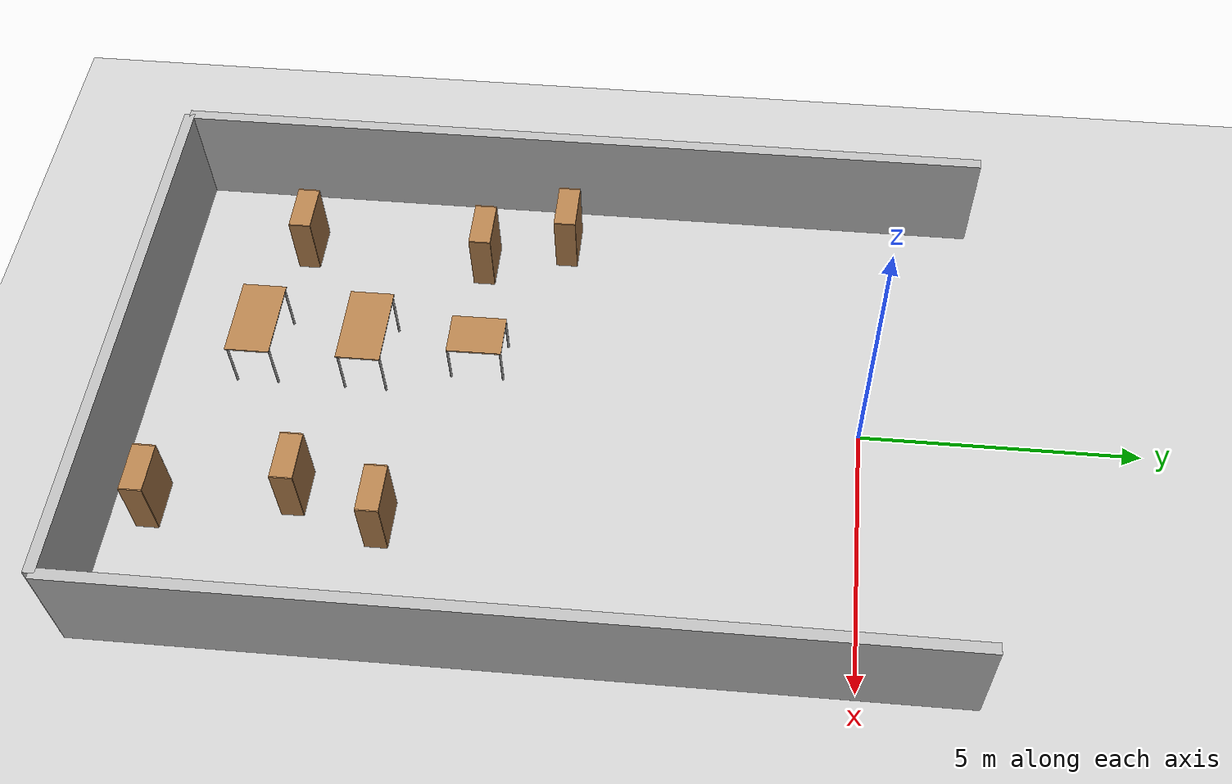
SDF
<sdf version="1.6">
 <world name="default">
  <model name="ground_plane">
   <static>1</static>
   <link name="link">
    <collision name="collision">
     <geometry><plane><normal>0 0 1</normal><size>100 100</size></plane></geometry>
     <surface><friction><ode><mu>100</mu><mu2>50</mu2></ode></friction></surface>
    </collision>
    <visual name="visual">
     <cast_shadows>0</cast_shadows>
     <geometry><plane><normal>0 0 1</normal><size>100 100</size></plane></geometry>
     <material>
      <script><uri>file://media/materials/scripts/gazebo.material</uri><name>Gazebo/Grey</name></script>
     </material>
    </visual>
    <velocity_decay><linear>0</linear><angular>0</angular></velocity_decay>
   </link>
  </model>
  <model name="wall_1_model">
   <pose>0 -13 1 0 -0 0</pose>
   <static>1</static>
   <link name="wall_1_body">
    <inertial>
     <mass>1</mass>
     <inertia><ixx>1</ixx><ixy>0</ixy><ixz>0</ixz><iyy>1</iyy><iyz>0</iyz><izz>1</izz></inertia>
    </inertial>
    <collision name="collision"><geometry><box><size>10 0.2 2</size></box></geometry></collision>
    <visual name="visual"><geometry><box><size>10 0.2 2</size></box></geometry></visual>
    <velocity_decay><linear>0</linear><angular>0</angular></velocity_decay>
   </link>
  </model>
  <model name="wall_3_model">
   <pose>-5 -5.5 1 0 -0 0</pose>
   <static>1</static>
   <link name="wall_3_body">
    <inertial>
     <mass>1</mass>
     <inertia><ixx>1</ixx><ixy>0</ixy><ixz>0</ixz><iyy>1</iyy><iyz>0</iyz><izz>1</izz></inertia>
    </inertial>
    <collision name="collision"><geometry><box><size>0.2 15 2</size></box></geometry></collision>
    <visual name="visual"><geometry><box><size>0.2 15 2</size></box></geometry></visual>
    <velocity_decay><linear>0</linear><angular>0</angular></velocity_decay>
   </link>
  </model>
  <model name="wall_4_model">
   <pose>5 -5.5 1 0 -0 0</pose>
   <static>1</static>
   <link name="wall_4_body">
    <inertial>
     <mass>1</mass>
     <inertia><ixx>1</ixx><ixy>0</ixy><ixz>0</ixz><iyy>1</iyy><iyz>0</iyz><izz>1</izz></inertia>
    </inertial>
    <collision name="collision"><geometry><box><size>0.2 15 2</size></box></geometry></collision>
    <visual name="visual"><geometry><box><size>0.2 15 2</size></box></geometry></visual>
    <velocity_decay><linear>0</linear><angular>0</angular></velocity_decay>
   </link>
  </model>
  <model name="bookshelf">
   <static>0</static>
   <link name="link">
    <inertial>
     <mass>1</mass>
     <inertia><ixx>1</ixx><ixy>0</ixy><ixz>0</ixz><iyy>1</iyy><iyz>0</iyz><izz>1</izz></inertia>
    </inertial>
    <collision name="back">
     <pose>0 0.005 0.6 0 -0 0</pose>
     <geometry><box><size>0.9 0.01 1.2</size></box></geometry>
    </collision>
    <visual name="visual1">
     <pose>0 0.005 0.6 0 -0 0</pose>
     <geometry><box><size>0.9 0.01 1.2</size></box></geometry>
     <material>
      <script><uri>file://media/materials/scripts/gazebo.material</uri><name>Gazebo/Wood</name></script>
     </material>
    </visual>
    <collision name="left_side">
     <pose>0.45 -0.195 0.6 0 -0 0</pose>
     <geometry><box><size>0.02 0.4 1.2</size></box></geometry>
    </collision>
    <visual name="visual2">
     <pose>0.45 -0.195 0.6 0 -0 0</pose>
     <geometry><box><size>0.02 0.4 1.2</size></box></geometry>
     <material>
      <script><uri>file://media/materials/scripts/gazebo.material</uri><name>Gazebo/Wood</name></script>
     </material>
    </visual>
    <collision name="right_side">
     <pose>-0.45 -0.195 0.6 0 -0 0</pose>
     <geometry><box><size>0.02 0.4 1.2</size></box></geometry>
    </collision>
    <visual name="visual3">
     <pose>-0.45 -0.195 0.6 0 -0 0</pose>
     <geometry><box><size>0.02 0.4 1.2</size></box></geometry>
     <material>
      <script><uri>file://media/materials/scripts/gazebo.material</uri><name>Gazebo/Wood</name></script>
     </material>
    </visual>
    <collision name="bottom">
     <pose>0 -0.195 0.03 0 -0 0</pose>
     <geometry><box><size>0.88 0.4 0.06</size></box></geometry>
    </collision>
    <visual name="visual4">
     <pose>0 -0.195 0.03 0 -0 0</pose>
     <geometry><box><size>0.88 0.4 0.06</size></box></geometry>
     <material>
      <script><uri>file://media/materials/scripts/gazebo.material</uri><name>Gazebo/Wood</name></script>
     </material>
    </visual>
    <collision name="top">
     <pose>0 -0.195 1.19 0 -0 0</pose>
     <geometry><box><size>0.88 0.4 0.02</size></box></geometry>
    </collision>
    <visual name="visual5">
     <pose>0 -0.195 1.19 0 -0 0</pose>
     <geometry><box><size>0.88 0.4 0.02</size></box></geometry>
     <material>
      <script><uri>file://media/materials/scripts/gazebo.material</uri><name>Gazebo/Wood</name></script>
     </material>
    </visual>
    <collision name="low_shelf">
     <pose>0 -0.195 0.43 0 -0 0</pose>
     <geometry><box><size>0.88 0.4 0.02</size></box></geometry>
    </collision>
    <visual name="visual6">
     <pose>0 -0.195 0.43 0 -0 0</pose>
     <geometry><box><size>0.88 0.4 0.02</size></box></geometry>
     <material>
      <script><uri>file://media/materials/scripts/gazebo.material</uri><name>Gazebo/Wood</name></script>
     </material>
    </visual>
    <collision name="high_shelf">
     <pose>0 -0.195 0.8 0 -0 0</pose>
     <geometry><box><size>0.88 0.4 0.02</size></box></geometry>
    </collision>
    <visual name="visual7">
     <pose>0 -0.195 0.8 0 -0 0</pose>
     <geometry><box><size>0.88 0.4 0.02</size></box></geometry>
     <material>
      <script><uri>file://media/materials/scripts/gazebo.material</uri><name>Gazebo/Wood</name></script>
     </material>
    </visual>
    <velocity_decay><linear>0</linear><angular>0</angular></velocity_decay>
   </link>
   <pose>2 -9.55401 -1e-06 -5e-05 -3e-06 0</pose>
  </model>
  <model name="table">
   <static>0</static>
   <link name="link">
    <collision name="surface">
     <pose>0 0 1 0 -0 0</pose>
     <geometry><box><size>1.5 0.8 0.03</size></box></geometry>
    </collision>
    <visual name="visual1">
     <pose>0 0 1 0 -0 0</pose>
     <geometry><box><size>1.5 0.8 0.03</size></box></geometry>
     <material>
      <script><uri>file://media/materials/scripts/gazebo.material</uri><name>Gazebo/Wood</name></script>
     </material>
    </visual>
    <collision name="front_left_leg">
     <pose>0.68 0.38 0.5 0 -0 0</pose>
     <geometry><cylinder><radius>0.02</radius><length>1</length></cylinder></geometry>
    </collision>
    <visual name="front_left_leg">
     <pose>0.68 0.38 0.5 0 -0 0</pose>
     <geometry><cylinder><radius>0.02</radius><length>1</length></cylinder></geometry>
     <material>
      <script><uri>file://media/materials/scripts/gazebo.material</uri><name>Gazebo/Grey</name></script>
     </material>
    </visual>
    <collision name="front_right_leg">
     <pose>0.68 -0.38 0.5 0 -0 0</pose>
     <geometry><cylinder><radius>0.02</radius><length>1</length></cylinder></geometry>
    </collision>
    <visual name="front_right_leg">
     <pose>0.68 -0.38 0.5 0 -0 0</pose>
     <geometry><cylinder><radius>0.02</radius><length>1</length></cylinder></geometry>
     <material>
      <script><uri>file://media/materials/scripts/gazebo.material</uri><name>Gazebo/Grey</name></script>
     </material>
    </visual>
    <collision name="back_right_leg">
     <pose>-0.68 -0.38 0.5 0 -0 0</pose>
     <geometry><cylinder><radius>0.02</radius><length>1</length></cylinder></geometry>
    </collision>
    <visual name="back_right_leg">
     <pose>-0.68 -0.38 0.5 0 -0 0</pose>
     <geometry><cylinder><radius>0.02</radius><length>1</length></cylinder></geometry>
     <material>
      <script><uri>file://media/materials/scripts/gazebo.material</uri><name>Gazebo/Grey</name></script>
     </material>
    </visual>
    <collision name="back_left_leg">
     <pose>-0.68 0.38 0.5 0 -0 0</pose>
     <geometry><cylinder><radius>0.02</radius><length>1</length></cylinder></geometry>
    </collision>
    <visual name="back_left_leg">
     <pose>-0.68 0.38 0.5 0 -0 0</pose>
     <geometry><cylinder><radius>0.02</radius><length>1</length></cylinder></geometry>
     <material>
      <script><uri>file://media/materials/scripts/gazebo.material</uri><name>Gazebo/Grey</name></script>
     </material>
    </visual>
    <velocity_decay><linear>0</linear><angular>0</angular></velocity_decay>
    <inertial>
     <inertia><ixx>1</ixx><ixy>0</ixy><ixz>0</ixz><iyy>1</iyy><iyz>0</iyz><izz>1</izz></inertia>
     <mass>1</mass>
    </inertial>
   </link>
   <pose>-1 -9 0 0 -0 0</pose>
  </model>
  <model name="bookshelf_2">
   <static>0</static>
   <link name="link">
    <inertial>
     <mass>1</mass>
     <inertia><ixx>1</ixx><ixy>0</ixy><ixz>0</ixz><iyy>1</iyy><iyz>0</iyz><izz>1</izz></inertia>
    </inertial>
    <collision name="back">
     <pose>0 0.005 0.6 0 -0 0</pose>
     <geometry><box><size>0.9 0.01 1.2</size></box></geometry>
    </collision>
    <visual name="visual1">
     <pose>0 0.005 0.6 0 -0 0</pose>
     <geometry><box><size>0.9 0.01 1.2</size></box></geometry>
     <material>
      <script><uri>file://media/materials/scripts/gazebo.material</uri><name>Gazebo/Wood</name></script>
     </material>
    </visual>
    <collision name="left_side">
     <pose>0.45 -0.195 0.6 0 -0 0</pose>
     <geometry><box><size>0.02 0.4 1.2</size></box></geometry>
    </collision>
    <visual name="visual2">
     <pose>0.45 -0.195 0.6 0 -0 0</pose>
     <geometry><box><size>0.02 0.4 1.2</size></box></geometry>
     <material>
      <script><uri>file://media/materials/scripts/gazebo.material</uri><name>Gazebo/Wood</name></script>
     </material>
    </visual>
    <collision name="right_side">
     <pose>-0.45 -0.195 0.6 0 -0 0</pose>
     <geometry><box><size>0.02 0.4 1.2</size></box></geometry>
    </collision>
    <visual name="visual3">
     <pose>-0.45 -0.195 0.6 0 -0 0</pose>
     <geometry><box><size>0.02 0.4 1.2</size></box></geometry>
     <material>
      <script><uri>file://media/materials/scripts/gazebo.material</uri><name>Gazebo/Wood</name></script>
     </material>
    </visual>
    <collision name="bottom">
     <pose>0 -0.195 0.03 0 -0 0</pose>
     <geometry><box><size>0.88 0.4 0.06</size></box></geometry>
    </collision>
    <visual name="visual4">
     <pose>0 -0.195 0.03 0 -0 0</pose>
     <geometry><box><size>0.88 0.4 0.06</size></box></geometry>
     <material>
      <script><uri>file://media/materials/scripts/gazebo.material</uri><name>Gazebo/Wood</name></script>
     </material>
    </visual>
    <collision name="top">
     <pose>0 -0.195 1.19 0 -0 0</pose>
     <geometry><box><size>0.88 0.4 0.02</size></box></geometry>
    </collision>
    <visual name="visual5">
     <pose>0 -0.195 1.19 0 -0 0</pose>
     <geometry><box><size>0.88 0.4 0.02</size></box></geometry>
     <material>
      <script><uri>file://media/materials/scripts/gazebo.material</uri><name>Gazebo/Wood</name></script>
     </material>
    </visual>
    <collision name="low_shelf">
     <pose>0 -0.195 0.43 0 -0 0</pose>
     <geometry><box><size>0.88 0.4 0.02</size></box></geometry>
    </collision>
    <visual name="visual6">
     <pose>0 -0.195 0.43 0 -0 0</pose>
     <geometry><box><size>0.88 0.4 0.02</size></box></geometry>
     <material>
      <script><uri>file://media/materials/scripts/gazebo.material</uri><name>Gazebo/Wood</name></script>
     </material>
    </visual>
    <collision name="high_shelf">
     <pose>0 -0.195 0.8 0 -0 0</pose>
     <geometry><box><size>0.88 0.4 0.02</size></box></geometry>
    </collision>
    <visual name="visual7">
     <pose>0 -0.195 0.8 0 -0 0</pose>
     <geometry><box><size>0.88 0.4 0.02</size></box></geometry>
     <material>
      <script><uri>file://media/materials/scripts/gazebo.material</uri><name>Gazebo/Wood</name></script>
     </material>
    </visual>
    <velocity_decay><linear>0</linear><angular>0</angular></velocity_decay>
   </link>
   <pose>-3.41849 -7 1e-06 -1.3e-05 -1e-06 0</pose>
  </model>
  <model name="table_1">
   <static>0</static>
   <link name="link">
    <collision name="surface">
     <pose>0 0 1 0 -0 0</pose>
     <geometry><box><size>1.5 0.8 0.03</size></box></geometry>
    </collision>
    <visual name="visual1">
     <pose>0 0 1 0 -0 0</pose>
     <geometry><box><size>1.5 0.8 0.03</size></box></geometry>
     <material>
      <script><uri>file://media/materials/scripts/gazebo.material</uri><name>Gazebo/Wood</name></script>
     </material>
    </visual>
    <collision name="front_left_leg">
     <pose>0.68 0.38 0.5 0 -0 0</pose>
     <geometry><cylinder><radius>0.02</radius><length>1</length></cylinder></geometry>
    </collision>
    <visual name="front_left_leg">
     <pose>0.68 0.38 0.5 0 -0 0</pose>
     <geometry><cylinder><radius>0.02</radius><length>1</length></cylinder></geometry>
     <material>
      <script><uri>file://media/materials/scripts/gazebo.material</uri><name>Gazebo/Grey</name></script>
     </material>
    </visual>
    <collision name="front_right_leg">
     <pose>0.68 -0.38 0.5 0 -0 0</pose>
     <geometry><cylinder><radius>0.02</radius><length>1</length></cylinder></geometry>
    </collision>
    <visual name="front_right_leg">
     <pose>0.68 -0.38 0.5 0 -0 0</pose>
     <geometry><cylinder><radius>0.02</radius><length>1</length></cylinder></geometry>
     <material>
      <script><uri>file://media/materials/scripts/gazebo.material</uri><name>Gazebo/Grey</name></script>
     </material>
    </visual>
    <collision name="back_right_leg">
     <pose>-0.68 -0.38 0.5 0 -0 0</pose>
     <geometry><cylinder><radius>0.02</radius><length>1</length></cylinder></geometry>
    </collision>
    <visual name="back_right_leg">
     <pose>-0.68 -0.38 0.5 0 -0 0</pose>
     <geometry><cylinder><radius>0.02</radius><length>1</length></cylinder></geometry>
     <material>
      <script><uri>file://media/materials/scripts/gazebo.material</uri><name>Gazebo/Grey</name></script>
     </material>
    </visual>
    <collision name="back_left_leg">
     <pose>-0.68 0.38 0.5 0 -0 0</pose>
     <geometry><cylinder><radius>0.02</radius><length>1</length></cylinder></geometry>
    </collision>
    <visual name="back_left_leg">
     <pose>-0.68 0.38 0.5 0 -0 0</pose>
     <geometry><cylinder><radius>0.02</radius><length>1</length></cylinder></geometry>
     <material>
      <script><uri>file://media/materials/scripts/gazebo.material</uri><name>Gazebo/Grey</name></script>
     </material>
    </visual>
    <velocity_decay><linear>0</linear><angular>0</angular></velocity_decay>
    <inertial>
     <inertia><ixx>1</ixx><ixy>0</ixy><ixz>0</ixz><iyy>1</iyy><iyz>0</iyz><izz>1</izz></inertia>
     <mass>1</mass>
    </inertial>
   </link>
   <pose>-1 -11 0 0 -0 0</pose>
  </model>
  <model name="bookshelf_3">
   <static>0</static>
   <link name="link">
    <inertial>
     <mass>1</mass>
     <inertia><ixx>1</ixx><ixy>0</ixy><ixz>0</ixz><iyy>1</iyy><iyz>0</iyz><izz>1</izz></inertia>
    </inertial>
    <collision name="back">
     <pose>0 0.005 0.6 0 -0 0</pose>
     <geometry><box><size>0.9 0.01 1.2</size></box></geometry>
    </collision>
    <visual name="visual1">
     <pose>0 0.005 0.6 0 -0 0</pose>
     <geometry><box><size>0.9 0.01 1.2</size></box></geometry>
     <material>
      <script><uri>file://media/materials/scripts/gazebo.material</uri><name>Gazebo/Wood</name></script>
     </material>
    </visual>
    <collision name="left_side">
     <pose>0.45 -0.195 0.6 0 -0 0</pose>
     <geometry><box><size>0.02 0.4 1.2</size></box></geometry>
    </collision>
    <visual name="visual2">
     <pose>0.45 -0.195 0.6 0 -0 0</pose>
     <geometry><box><size>0.02 0.4 1.2</size></box></geometry>
     <material>
      <script><uri>file://media/materials/scripts/gazebo.material</uri><name>Gazebo/Wood</name></script>
     </material>
    </visual>
    <collision name="right_side">
     <pose>-0.45 -0.195 0.6 0 -0 0</pose>
     <geometry><box><size>0.02 0.4 1.2</size></box></geometry>
    </collision>
    <visual name="visual3">
     <pose>-0.45 -0.195 0.6 0 -0 0</pose>
     <geometry><box><size>0.02 0.4 1.2</size></box></geometry>
     <material>
      <script><uri>file://media/materials/scripts/gazebo.material</uri><name>Gazebo/Wood</name></script>
     </material>
    </visual>
    <collision name="bottom">
     <pose>0 -0.195 0.03 0 -0 0</pose>
     <geometry><box><size>0.88 0.4 0.06</size></box></geometry>
    </collision>
    <visual name="visual4">
     <pose>0 -0.195 0.03 0 -0 0</pose>
     <geometry><box><size>0.88 0.4 0.06</size></box></geometry>
     <material>
      <script><uri>file://media/materials/scripts/gazebo.material</uri><name>Gazebo/Wood</name></script>
     </material>
    </visual>
    <collision name="top">
     <pose>0 -0.195 1.19 0 -0 0</pose>
     <geometry><box><size>0.88 0.4 0.02</size></box></geometry>
    </collision>
    <visual name="visual5">
     <pose>0 -0.195 1.19 0 -0 0</pose>
     <geometry><box><size>0.88 0.4 0.02</size></box></geometry>
     <material>
      <script><uri>file://media/materials/scripts/gazebo.material</uri><name>Gazebo/Wood</name></script>
     </material>
    </visual>
    <collision name="low_shelf">
     <pose>0 -0.195 0.43 0 -0 0</pose>
     <geometry><box><size>0.88 0.4 0.02</size></box></geometry>
    </collision>
    <visual name="visual6">
     <pose>0 -0.195 0.43 0 -0 0</pose>
     <geometry><box><size>0.88 0.4 0.02</size></box></geometry>
     <material>
      <script><uri>file://media/materials/scripts/gazebo.material</uri><name>Gazebo/Wood</name></script>
     </material>
    </visual>
    <collision name="high_shelf">
     <pose>0 -0.195 0.8 0 -0 0</pose>
     <geometry><box><size>0.88 0.4 0.02</size></box></geometry>
    </collision>
    <visual name="visual7">
     <pose>0 -0.195 0.8 0 -0 0</pose>
     <geometry><box><size>0.88 0.4 0.02</size></box></geometry>
     <material>
      <script><uri>file://media/materials/scripts/gazebo.material</uri><name>Gazebo/Wood</name></script>
     </material>
    </visual>
    <velocity_decay><linear>0</linear><angular>0</angular></velocity_decay>
   </link>
   <pose>2.45055 -12 0 -1.8e-05 0 0</pose>
  </model>
  <model name="bookshelf_4">
   <static>0</static>
   <link name="link">
    <inertial>
     <mass>1</mass>
     <inertia><ixx>1</ixx><ixy>0</ixy><ixz>0</ixz><iyy>1</iyy><iyz>0</iyz><izz>1</izz></inertia>
    </inertial>
    <collision name="back">
     <pose>0 0.005 0.6 0 -0 0</pose>
     <geometry><box><size>0.9 0.01 1.2</size></box></geometry>
    </collision>
    <visual name="visual1">
     <pose>0 0.005 0.6 0 -0 0</pose>
     <geometry><box><size>0.9 0.01 1.2</size></box></geometry>
     <material>
      <script><uri>file://media/materials/scripts/gazebo.material</uri><name>Gazebo/Wood</name></script>
     </material>
    </visual>
    <collision name="left_side">
     <pose>0.45 -0.195 0.6 0 -0 0</pose>
     <geometry><box><size>0.02 0.4 1.2</size></box></geometry>
    </collision>
    <visual name="visual2">
     <pose>0.45 -0.195 0.6 0 -0 0</pose>
     <geometry><box><size>0.02 0.4 1.2</size></box></geometry>
     <material>
      <script><uri>file://media/materials/scripts/gazebo.material</uri><name>Gazebo/Wood</name></script>
     </material>
    </visual>
    <collision name="right_side">
     <pose>-0.45 -0.195 0.6 0 -0 0</pose>
     <geometry><box><size>0.02 0.4 1.2</size></box></geometry>
    </collision>
    <visual name="visual3">
     <pose>-0.45 -0.195 0.6 0 -0 0</pose>
     <geometry><box><size>0.02 0.4 1.2</size></box></geometry>
     <material>
      <script><uri>file://media/materials/scripts/gazebo.material</uri><name>Gazebo/Wood</name></script>
     </material>
    </visual>
    <collision name="bottom">
     <pose>0 -0.195 0.03 0 -0 0</pose>
     <geometry><box><size>0.88 0.4 0.06</size></box></geometry>
    </collision>
    <visual name="visual4">
     <pose>0 -0.195 0.03 0 -0 0</pose>
     <geometry><box><size>0.88 0.4 0.06</size></box></geometry>
     <material>
      <script><uri>file://media/materials/scripts/gazebo.material</uri><name>Gazebo/Wood</name></script>
     </material>
    </visual>
    <collision name="top">
     <pose>0 -0.195 1.19 0 -0 0</pose>
     <geometry><box><size>0.88 0.4 0.02</size></box></geometry>
    </collision>
    <visual name="visual5">
     <pose>0 -0.195 1.19 0 -0 0</pose>
     <geometry><box><size>0.88 0.4 0.02</size></box></geometry>
     <material>
      <script><uri>file://media/materials/scripts/gazebo.material</uri><name>Gazebo/Wood</name></script>
     </material>
    </visual>
    <collision name="low_shelf">
     <pose>0 -0.195 0.43 0 -0 0</pose>
     <geometry><box><size>0.88 0.4 0.02</size></box></geometry>
    </collision>
    <visual name="visual6">
     <pose>0 -0.195 0.43 0 -0 0</pose>
     <geometry><box><size>0.88 0.4 0.02</size></box></geometry>
     <material>
      <script><uri>file://media/materials/scripts/gazebo.material</uri><name>Gazebo/Wood</name></script>
     </material>
    </visual>
    <collision name="high_shelf">
     <pose>0 -0.195 0.8 0 -0 0</pose>
     <geometry><box><size>0.88 0.4 0.02</size></box></geometry>
    </collision>
    <visual name="visual7">
     <pose>0 -0.195 0.8 0 -0 0</pose>
     <geometry><box><size>0.88 0.4 0.02</size></box></geometry>
     <material>
      <script><uri>file://media/materials/scripts/gazebo.material</uri><name>Gazebo/Wood</name></script>
     </material>
    </visual>
    <velocity_decay><linear>0</linear><angular>0</angular></velocity_decay>
   </link>
   <pose>2.51316 -8 0 -3e-05 0 0</pose>
  </model>
  <model name="bookshelf_5">
   <static>0</static>
   <link name="link">
    <inertial>
     <mass>1</mass>
     <inertia><ixx>1</ixx><ixy>0</ixy><ixz>0</ixz><iyy>1</iyy><iyz>0</iyz><izz>1</izz></inertia>
    </inertial>
    <collision name="back">
     <pose>0 0.005 0.6 0 -0 0</pose>
     <geometry><box><size>0.9 0.01 1.2</size></box></geometry>
    </collision>
    <visual name="visual1">
     <pose>0 0.005 0.6 0 -0 0</pose>
     <geometry><box><size>0.9 0.01 1.2</size></box></geometry>
     <material>
      <script><uri>file://media/materials/scripts/gazebo.material</uri><name>Gazebo/Wood</name></script>
     </material>
    </visual>
    <collision name="left_side">
     <pose>0.45 -0.195 0.6 0 -0 0</pose>
     <geometry><box><size>0.02 0.4 1.2</size></box></geometry>
    </collision>
    <visual name="visual2">
     <pose>0.45 -0.195 0.6 0 -0 0</pose>
     <geometry><box><size>0.02 0.4 1.2</size></box></geometry>
     <material>
      <script><uri>file://media/materials/scripts/gazebo.material</uri><name>Gazebo/Wood</name></script>
     </material>
    </visual>
    <collision name="right_side">
     <pose>-0.45 -0.195 0.6 0 -0 0</pose>
     <geometry><box><size>0.02 0.4 1.2</size></box></geometry>
    </collision>
    <visual name="visual3">
     <pose>-0.45 -0.195 0.6 0 -0 0</pose>
     <geometry><box><size>0.02 0.4 1.2</size></box></geometry>
     <material>
      <script><uri>file://media/materials/scripts/gazebo.material</uri><name>Gazebo/Wood</name></script>
     </material>
    </visual>
    <collision name="bottom">
     <pose>0 -0.195 0.03 0 -0 0</pose>
     <geometry><box><size>0.88 0.4 0.06</size></box></geometry>
    </collision>
    <visual name="visual4">
     <pose>0 -0.195 0.03 0 -0 0</pose>
     <geometry><box><size>0.88 0.4 0.06</size></box></geometry>
     <material>
      <script><uri>file://media/materials/scripts/gazebo.material</uri><name>Gazebo/Wood</name></script>
     </material>
    </visual>
    <collision name="top">
     <pose>0 -0.195 1.19 0 -0 0</pose>
     <geometry><box><size>0.88 0.4 0.02</size></box></geometry>
    </collision>
    <visual name="visual5">
     <pose>0 -0.195 1.19 0 -0 0</pose>
     <geometry><box><size>0.88 0.4 0.02</size></box></geometry>
     <material>
      <script><uri>file://media/materials/scripts/gazebo.material</uri><name>Gazebo/Wood</name></script>
     </material>
    </visual>
    <collision name="low_shelf">
     <pose>0 -0.195 0.43 0 -0 0</pose>
     <geometry><box><size>0.88 0.4 0.02</size></box></geometry>
    </collision>
    <visual name="visual6">
     <pose>0 -0.195 0.43 0 -0 0</pose>
     <geometry><box><size>0.88 0.4 0.02</size></box></geometry>
     <material>
      <script><uri>file://media/materials/scripts/gazebo.material</uri><name>Gazebo/Wood</name></script>
     </material>
    </visual>
    <collision name="high_shelf">
     <pose>0 -0.195 0.8 0 -0 0</pose>
     <geometry><box><size>0.88 0.4 0.02</size></box></geometry>
    </collision>
    <visual name="visual7">
     <pose>0 -0.195 0.8 0 -0 0</pose>
     <geometry><box><size>0.88 0.4 0.02</size></box></geometry>
     <material>
      <script><uri>file://media/materials/scripts/gazebo.material</uri><name>Gazebo/Wood</name></script>
     </material>
    </visual>
    <velocity_decay><linear>0</linear><angular>0</angular></velocity_decay>
   </link>
   <pose>-3.53929 -10.4222 -1e-06 -2.7e-05 -3e-06 0</pose>
  </model>
  <model name="bookshelf_6">
   <static>0</static>
   <link name="link">
    <inertial>
     <mass>1</mass>
     <inertia><ixx>1</ixx><ixy>0</ixy><ixz>0</ixz><iyy>1</iyy><iyz>0</iyz><izz>1</izz></inertia>
    </inertial>
    <collision name="back">
     <pose>0 0.005 0.6 0 -0 0</pose>
     <geometry><box><size>0.9 0.01 1.2</size></box></geometry>
    </collision>
    <visual name="visual1">
     <pose>0 0.005 0.6 0 -0 0</pose>
     <geometry><box><size>0.9 0.01 1.2</size></box></geometry>
     <material>
      <script><uri>file://media/materials/scripts/gazebo.material</uri><name>Gazebo/Wood</name></script>
     </material>
    </visual>
    <collision name="left_side">
     <pose>0.45 -0.195 0.6 0 -0 0</pose>
     <geometry><box><size>0.02 0.4 1.2</size></box></geometry>
    </collision>
    <visual name="visual2">
     <pose>0.45 -0.195 0.6 0 -0 0</pose>
     <geometry><box><size>0.02 0.4 1.2</size></box></geometry>
     <material>
      <script><uri>file://media/materials/scripts/gazebo.material</uri><name>Gazebo/Wood</name></script>
     </material>
    </visual>
    <collision name="right_side">
     <pose>-0.45 -0.195 0.6 0 -0 0</pose>
     <geometry><box><size>0.02 0.4 1.2</size></box></geometry>
    </collision>
    <visual name="visual3">
     <pose>-0.45 -0.195 0.6 0 -0 0</pose>
     <geometry><box><size>0.02 0.4 1.2</size></box></geometry>
     <material>
      <script><uri>file://media/materials/scripts/gazebo.material</uri><name>Gazebo/Wood</name></script>
     </material>
    </visual>
    <collision name="bottom">
     <pose>0 -0.195 0.03 0 -0 0</pose>
     <geometry><box><size>0.88 0.4 0.06</size></box></geometry>
    </collision>
    <visual name="visual4">
     <pose>0 -0.195 0.03 0 -0 0</pose>
     <geometry><box><size>0.88 0.4 0.06</size></box></geometry>
     <material>
      <script><uri>file://media/materials/scripts/gazebo.material</uri><name>Gazebo/Wood</name></script>
     </material>
    </visual>
    <collision name="top">
     <pose>0 -0.195 1.19 0 -0 0</pose>
     <geometry><box><size>0.88 0.4 0.02</size></box></geometry>
    </collision>
    <visual name="visual5">
     <pose>0 -0.195 1.19 0 -0 0</pose>
     <geometry><box><size>0.88 0.4 0.02</size></box></geometry>
     <material>
      <script><uri>file://media/materials/scripts/gazebo.material</uri><name>Gazebo/Wood</name></script>
     </material>
    </visual>
    <collision name="low_shelf">
     <pose>0 -0.195 0.43 0 -0 0</pose>
     <geometry><box><size>0.88 0.4 0.02</size></box></geometry>
    </collision>
    <visual name="visual6">
     <pose>0 -0.195 0.43 0 -0 0</pose>
     <geometry><box><size>0.88 0.4 0.02</size></box></geometry>
     <material>
      <script><uri>file://media/materials/scripts/gazebo.material</uri><name>Gazebo/Wood</name></script>
     </material>
    </visual>
    <collision name="high_shelf">
     <pose>0 -0.195 0.8 0 -0 0</pose>
     <geometry><box><size>0.88 0.4 0.02</size></box></geometry>
    </collision>
    <visual name="visual7">
     <pose>0 -0.195 0.8 0 -0 0</pose>
     <geometry><box><size>0.88 0.4 0.02</size></box></geometry>
     <material>
      <script><uri>file://media/materials/scripts/gazebo.material</uri><name>Gazebo/Wood</name></script>
     </material>
    </visual>
    <velocity_decay><linear>0</linear><angular>0</angular></velocity_decay>
   </link>
   <pose>-4 -5.47465 0 -1.1e-05 0 0</pose>
  </model>
  <model name="table_2">
   <static>1</static>
   <link name="link">
    <collision name="surface">
     <pose>0 0 0.8 0 -0 0</pose>
     <geometry><box><size>1 0.8 0.03</size></box></geometry>
    </collision>
    <visual name="visual1">
     <pose>0 0 0.8 0 -0 0</pose>
     <geometry><box><size>1 0.8 0.03</size></box></geometry>
     <material>
      <script><uri>file://media/materials/scripts/gazebo.material</uri><name>Gazebo/Wood</name></script>
     </material>
    </visual>
    <collision name="front_left_leg">
     <pose>0.48 0.38 0.4 0 -0 0</pose>
     <geometry><cylinder><radius>0.02</radius><length>0.8</length></cylinder></geometry>
    </collision>
    <visual name="front_left_leg">
     <pose>0.48 0.38 0.4 0 -0 0</pose>
     <geometry><cylinder><radius>0.02</radius><length>0.8</length></cylinder></geometry>
     <material>
      <script><uri>file://media/materials/scripts/gazebo.material</uri><name>Gazebo/Grey</name></script>
     </material>
    </visual>
    <collision name="front_right_leg">
     <pose>0.48 -0.38 0.4 0 -0 0</pose>
     <geometry><cylinder><radius>0.02</radius><length>0.8</length></cylinder></geometry>
    </collision>
    <visual name="front_right_leg">
     <pose>0.48 -0.38 0.4 0 -0 0</pose>
     <geometry><cylinder><radius>0.02</radius><length>0.8</length></cylinder></geometry>
     <material>
      <script><uri>file://media/materials/scripts/gazebo.material</uri><name>Gazebo/Grey</name></script>
     </material>
    </visual>
    <collision name="back_right_leg">
     <pose>-0.48 -0.38 0.4 0 -0 0</pose>
     <geometry><cylinder><radius>0.02</radius><length>0.8</length></cylinder></geometry>
    </collision>
    <visual name="back_right_leg">
     <pose>-0.48 -0.38 0.4 0 -0 0</pose>
     <geometry><cylinder><radius>0.02</radius><length>0.8</length></cylinder></geometry>
     <material>
      <script><uri>file://media/materials/scripts/gazebo.material</uri><name>Gazebo/Grey</name></script>
     </material>
    </visual>
    <collision name="back_left_leg">
     <pose>-0.48 0.38 0.4 0 -0 0</pose>
     <geometry><cylinder><radius>0.02</radius><length>0.8</length></cylinder></geometry>
    </collision>
    <visual name="back_left_leg">
     <pose>-0.48 0.38 0.4 0 -0 0</pose>
     <geometry><cylinder><radius>0.02</radius><length>0.8</length></cylinder></geometry>
     <material>
      <script><uri>file://media/materials/scripts/gazebo.material</uri><name>Gazebo/Grey</name></script>
     </material>
    </visual>
    <velocity_decay><linear>0</linear><angular>0</angular></velocity_decay>
   </link>
   <pose>-1.10904 -7.00227 0 0 -0 1.57626</pose>
  </model>
 </world>
</sdf>
